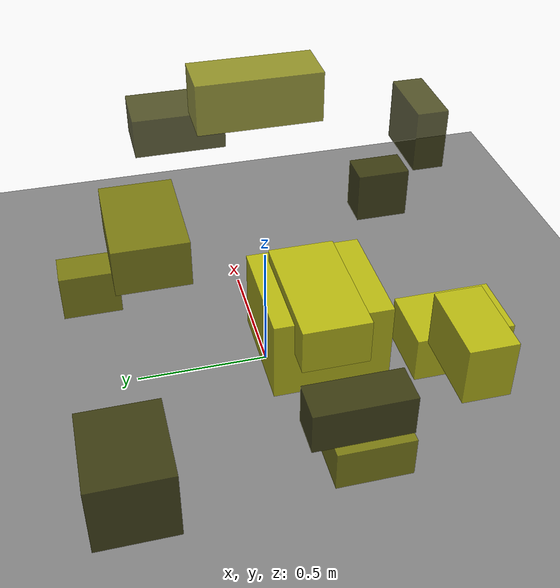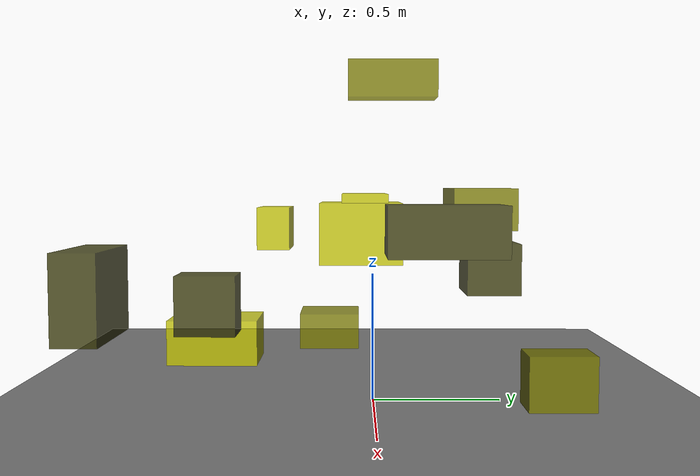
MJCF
<?xml version="1.0"?>
<mujoco model="obstacle_scene">
  <compiler angle="radian" coordinate="local"/>
  <option timestep="0.001" gravity="0 0 -9.81"/>

  <asset>
    <material name="obstacle_mat" rgba="0.8 0.8 0.0 0.8"/>
    <material name="ground_mat" rgba="0.5 0.5 0.5 1"/>
  </asset>

  <worldbody>
    <!-- Ground plane -->
    <geom name="ground" type="plane" size="3 3 0.1" material="ground_mat"/>

    <!-- Obstacles -->
    <body name="obstacle_0" pos="0.679943 0.201086 0.708079">
      <geom name="obs_0" type="box" size="0.110914 0.179104 0.078440" rgba="0.2 0.2 0.0 0.8"/>
    </body>
    <body name="obstacle_1" pos="-0.631080 -0.184881 0.176116">
      <geom name="obs_1" type="box" size="0.126498 0.135026 0.078456" rgba="0.5 0.5 0.0 0.8"/>
    </body>
    <body name="obstacle_2" pos="-0.573254 -0.024364 0.734298">
      <geom name="obs_2" type="box" size="0.200024 0.102708 0.072768" rgba="0.8 0.8 0.0 0.8"/>
    </body>
    <body name="obstacle_3" pos="0.413447 -0.571254 0.443538">
      <geom name="obs_3" type="box" size="0.067283 0.102042 0.101225" rgba="0.2 0.2 0.0 0.8"/>
    </body>
    <body name="obstacle_4" pos="-0.124283 0.431349 0.752090">
      <geom name="obs_4" type="box" size="0.186131 0.122531 0.081521" rgba="0.5 0.5 0.0 0.8"/>
    </body>
    <body name="obstacle_5" pos="-0.234174 -0.654460 0.200507">
      <geom name="obs_5" type="box" size="0.124680 0.184582 0.091616" rgba="0.8 0.8 0.0 0.8"/>
    </body>
    <body name="obstacle_6" pos="-0.825862 0.602297 0.438906">
      <geom name="obs_6" type="box" size="0.148937 0.128628 0.124214" rgba="0.2 0.2 0.0 0.8"/>
    </body>
    <body name="obstacle_7" pos="0.396911 0.627243 0.177687">
      <geom name="obs_7" type="box" size="0.070615 0.115715 0.095720" rgba="0.5 0.5 0.0 0.8"/>
    </body>
    <body name="obstacle_8" pos="-0.754964 -0.452358 0.641220">
      <geom name="obs_8" type="box" size="0.135252 0.076458 0.099500" rgba="0.8 0.8 0.0 0.8"/>
    </body>
    <body name="obstacle_9" pos="0.736799 -0.860699 0.523422">
      <geom name="obs_9" type="box" size="0.155731 0.066708 0.134220" rgba="0.2 0.2 0.0 0.8"/>
    </body>
    <body name="obstacle_10" pos="-0.250559 0.086361 1.285195">
      <geom name="obs_10" type="box" size="0.075624 0.184767 0.076789" rgba="0.5 0.5 0.0 0.8"/>
    </body>
    <body name="obstacle_11" pos="-0.510539 -0.042198 0.633076">
      <geom name="obs_11" type="box" size="0.178433 0.181619 0.134312" rgba="0.8 0.8 0.0 0.8"/>
    </body>
    <body name="obstacle_12" pos="-0.840421 -0.075443 0.541402">
      <geom name="obs_12" type="box" size="0.064603 0.158391 0.071136" rgba="0.2 0.2 0.0 0.8"/>
    </body>
  </worldbody>
</mujoco>
